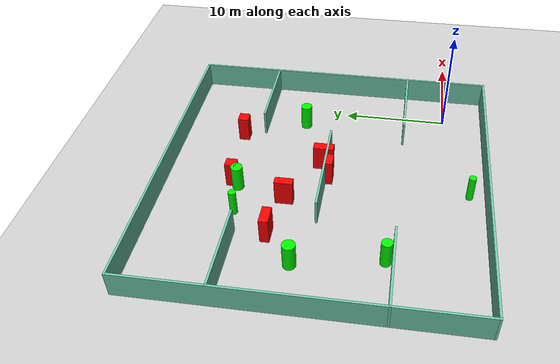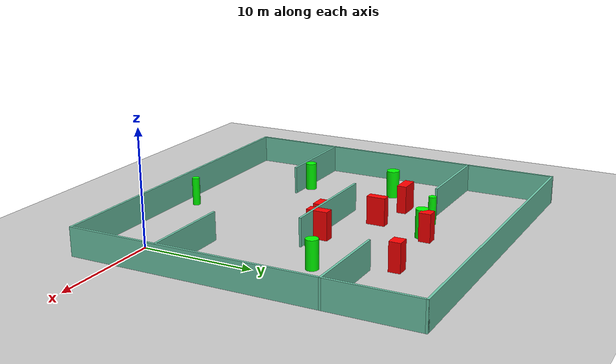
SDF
<sdf version="1.7">
 <world name="default">
  <light name="sun" type="directional">
   <pose>0 0 10 0 -0 0</pose>
   <diffuse>0.8 0.8 0.8 1</diffuse>
   <specular>0.2 0.2 0.2 1</specular>
   <attenuation>
    <range>1000</range>
    <constant>0.9</constant>
    <linear>0.01</linear>
    <quadratic>0.001</quadratic>
   </attenuation>
   <direction>-0.5 0.1 -0.9</direction>
   <spot><inner_angle>0</inner_angle><outer_angle>0</outer_angle><falloff>0</falloff></spot>
  </light>
  <model name="ground_plane">
   <static>1</static>
   <link name="link">
    <collision name="collision">
     <geometry><plane><normal>0 0 1</normal><size>100 100</size></plane></geometry>
     <surface>
      <contact><collide_bitmask>65535</collide_bitmask></contact>
      <friction><ode><mu>100</mu><mu2>50</mu2></ode></friction>
     </surface>
    </collision>
    <visual name="visual">
     <cast_shadows>0</cast_shadows>
     <geometry><plane><normal>0 0 1</normal><size>100 100</size></plane></geometry>
     <material>
      <script><uri>file://media/materials/scripts/gazebo.material</uri><name>Gazebo/Grey</name></script>
     </material>
    </visual>
   </link>
  </model>
  <gravity>0 0 -9.8</gravity>
  <magnetic_field>6e-06 2.3e-05 -4.2e-05</magnetic_field>
  <atmosphere type="adiabatic"/>
  <physics type="ode">
   <max_step_size>0.001</max_step_size>
   <real_time_factor>1</real_time_factor>
   <real_time_update_rate>1000</real_time_update_rate>
  </physics>
  <scene><ambient>0.4 0.4 0.4 1</ambient><background>0.7 0.7 0.7 1</background><shadows>1</shadows></scene>
  <spherical_coordinates>
   <surface_model>EARTH_WGS84</surface_model>
   <latitude_deg>0</latitude_deg>
   <longitude_deg>0</longitude_deg>
   <elevation>0</elevation>
   <heading_deg>0</heading_deg>
  </spherical_coordinates>
  <model name="my_base_walls">
   <link name="Wall_10">
    <collision name="Wall_10_Collision">
     <geometry><box><size>8.2 0.2 2.5</size></box></geometry>
     <pose>0 0 1.25 0 -0 0</pose>
    </collision>
    <visual name="Wall_10_Visual">
     <pose>0 0 1.25 0 -0 0</pose>
     <geometry><box><size>8.2 0.2 2.5</size></box></geometry>
     <material>
      <script><uri>file://media/materials/scripts/gazebo.material</uri><name>Gazebo/Grey</name></script>
      <ambient>0.435294 0.796078 0.67451 1</ambient>
     </material>
     <meta><layer>0</layer></meta>
    </visual>
    <pose>-11 -7 0 0 -0 0</pose>
   </link>
   <link name="Wall_12">
    <collision name="Wall_12_Collision">
     <geometry><box><size>8.2 0.2 2.5</size></box></geometry>
     <pose>0 0 1.25 0 -0 0</pose>
    </collision>
    <visual name="Wall_12_Visual">
     <pose>0 0 1.25 0 -0 0</pose>
     <geometry><box><size>8.2 0.2 2.5</size></box></geometry>
     <material>
      <script><uri>file://media/materials/scripts/gazebo.material</uri><name>Gazebo/Grey</name></script>
      <ambient>0.435294 0.796078 0.67451 1</ambient>
     </material>
     <meta><layer>0</layer></meta>
    </visual>
    <pose>-11 7 0 0 -0 0</pose>
   </link>
   <link name="Wall_14">
    <collision name="Wall_14_Collision">
     <geometry><box><size>8.2 0.2 2.5</size></box></geometry>
     <pose>0 0 1.25 0 -0 0</pose>
    </collision>
    <visual name="Wall_14_Visual">
     <pose>0 0 1.25 0 -0 0</pose>
     <geometry><box><size>8.2 0.2 2.5</size></box></geometry>
     <material>
      <script><uri>file://media/materials/scripts/gazebo.material</uri><name>Gazebo/Grey</name></script>
      <ambient>0.435294 0.796078 0.67451 1</ambient>
     </material>
     <meta><layer>0</layer></meta>
    </visual>
    <pose>11 7 0 0 -0 3.14159</pose>
   </link>
   <link name="Wall_16">
    <collision name="Wall_16_Collision">
     <geometry><box><size>10.2 0.2 2.5</size></box></geometry>
     <pose>0 0 1.25 0 -0 0</pose>
    </collision>
    <visual name="Wall_16_Visual">
     <pose>0 0 1.25 0 -0 0</pose>
     <geometry><box><size>10.2 0.2 2.5</size></box></geometry>
     <material>
      <script><uri>file://media/materials/scripts/gazebo.material</uri><name>Gazebo/Grey</name></script>
      <ambient>0.435294 0.796078 0.67451 1</ambient>
     </material>
     <meta><layer>0</layer></meta>
    </visual>
    <pose>0 0 0 0 -0 3.14159</pose>
   </link>
   <link name="Wall_2">
    <collision name="Wall_2_Collision">
     <geometry><box><size>30.2 0.2 2.5</size></box></geometry>
     <pose>0 0 1.25 0 -0 0</pose>
    </collision>
    <visual name="Wall_2_Visual">
     <pose>0 0 1.25 0 -0 0</pose>
     <geometry><box><size>30.2 0.2 2.5</size></box></geometry>
     <material>
      <script><uri>file://media/materials/scripts/gazebo.material</uri><name>Gazebo/Grey</name></script>
      <ambient>0.435294 0.796078 0.67451 1</ambient>
     </material>
     <meta><layer>0</layer></meta>
    </visual>
    <pose>0 -15 0 0 -0 3.14159</pose>
   </link>
   <link name="Wall_3">
    <collision name="Wall_3_Collision">
     <geometry><box><size>30.2 0.2 2.5</size></box></geometry>
     <pose>0 0 1.25 0 -0 0</pose>
    </collision>
    <visual name="Wall_3_Visual">
     <pose>0 0 1.25 0 -0 0</pose>
     <geometry><box><size>30.2 0.2 2.5</size></box></geometry>
     <material>
      <script><uri>file://media/materials/scripts/gazebo.material</uri><name>Gazebo/Grey</name></script>
      <ambient>0.435294 0.796078 0.67451 1</ambient>
     </material>
     <meta><layer>0</layer></meta>
    </visual>
    <pose>-15 0 0 0 -0 1.5708</pose>
   </link>
   <link name="Wall_4">
    <collision name="Wall_4_Collision">
     <geometry><box><size>30.2 0.2 2.5</size></box></geometry>
     <pose>0 0 1.25 0 -0 0</pose>
    </collision>
    <visual name="Wall_4_Visual">
     <pose>0 0 1.25 0 -0 0</pose>
     <geometry><box><size>30.2 0.2 2.5</size></box></geometry>
     <material>
      <script><uri>file://media/materials/scripts/gazebo.material</uri><name>Gazebo/Grey</name></script>
      <ambient>0.435294 0.796078 0.67451 1</ambient>
     </material>
     <meta><layer>0</layer></meta>
    </visual>
    <pose>0 15 0 0 -0 0</pose>
   </link>
   <link name="Wall_6">
    <collision name="Wall_6_Collision">
     <geometry><box><size>30.2 0.2 2.5</size></box></geometry>
     <pose>0 0 1.25 0 -0 0</pose>
    </collision>
    <visual name="Wall_6_Visual">
     <pose>0 0 1.25 0 -0 0</pose>
     <geometry><box><size>30.2 0.2 2.5</size></box></geometry>
     <material>
      <script><uri>file://media/materials/scripts/gazebo.material</uri><name>Gazebo/Grey</name></script>
      <ambient>0.435294 0.796078 0.67451 1</ambient>
     </material>
     <meta><layer>0</layer></meta>
    </visual>
    <pose>15 0 0 0 -0 1.5708</pose>
   </link>
   <link name="Wall_8">
    <collision name="Wall_8_Collision">
     <geometry><box><size>8.2 0.2 2.5</size></box></geometry>
     <pose>0 0 1.25 0 -0 0</pose>
    </collision>
    <visual name="Wall_8_Visual">
     <pose>0 0 1.25 0 -0 0</pose>
     <geometry><box><size>8.2 0.2 2.5</size></box></geometry>
     <material>
      <script><uri>file://media/materials/scripts/gazebo.material</uri><name>Gazebo/Grey</name></script>
      <ambient>0.435294 0.796078 0.67451 1</ambient>
     </material>
     <meta><layer>0</layer></meta>
    </visual>
    <pose>11 -7 0 0 -0 3.14159</pose>
   </link>
   <static>1</static>
   <pose>-11 11 0 0 -0 0</pose>
  </model>
  <model name="cylinder1">
   <static>1</static>
   <link name="link">
    <inertial>
     <mass>1</mass>
     <inertia><ixx>0.5</ixx><ixy>0</ixy><ixz>0</ixz><iyy>0.5</iyy><iyz>0</iyz><izz>1</izz></inertia>
    </inertial>
    <collision name="collision">
     <geometry><cylinder><radius>0.48927062929468407</radius><length>2.5</length></cylinder></geometry>
    </collision>
    <visual name="visual">
     <geometry><cylinder><radius>0.48927062929468407</radius><length>2.5</length></cylinder></geometry>
     <material>
      <ambient>0 1 0 1</ambient>
      <diffuse>0 1 0 1</diffuse>
      <specular>0.1 0.1 0.1 1</specular>
      <emissive>0 0 0 0</emissive>
     </material>
    </visual>
   </link>
   <pose>-19.81671378456395 4.626723884404364 1.25 0 0 0</pose>
  </model>
  <model name="cylinder2">
   <static>1</static>
   <link name="link">
    <inertial>
     <mass>1</mass>
     <inertia><ixx>0.5</ixx><ixy>0</ixy><ixz>0</ixz><iyy>0.5</iyy><iyz>0</iyz><izz>1</izz></inertia>
    </inertial>
    <collision name="collision">
     <geometry><cylinder><radius>0.3387514005601002</radius><length>2.5</length></cylinder></geometry>
    </collision>
    <visual name="visual">
     <geometry><cylinder><radius>0.3387514005601002</radius><length>2.5</length></cylinder></geometry>
     <material>
      <ambient>0 1 0 1</ambient>
      <diffuse>0 1 0 1</diffuse>
      <specular>0.1 0.1 0.1 1</specular>
      <emissive>0 0 0 0</emissive>
     </material>
    </visual>
   </link>
   <pose>-11.008318325477527 -2.4816487061750667 1.25 0 0 0</pose>
  </model>
  <model name="cylinder3">
   <static>1</static>
   <link name="link">
    <inertial>
     <mass>1</mass>
     <inertia><ixx>0.5</ixx><ixy>0</ixy><ixz>0</ixz><iyy>0.5</iyy><iyz>0</iyz><izz>1</izz></inertia>
    </inertial>
    <collision name="collision">
     <geometry><cylinder><radius>0.5445513410813165</radius><length>2.5</length></cylinder></geometry>
    </collision>
    <visual name="visual">
     <geometry><cylinder><radius>0.5445513410813165</radius><length>2.5</length></cylinder></geometry>
     <material>
      <ambient>0 1 0 1</ambient>
      <diffuse>0 1 0 1</diffuse>
      <specular>0.1 0.1 0.1 1</specular>
      <emissive>0 0 0 0</emissive>
     </material>
    </visual>
   </link>
   <pose>-12.454959127392115 18.884421743394032 1.25 0 0 0</pose>
  </model>
  <model name="cylinder4">
   <static>1</static>
   <link name="link">
    <inertial>
     <mass>1</mass>
     <inertia><ixx>0.5</ixx><ixy>0</ixy><ixz>0</ixz><iyy>0.5</iyy><iyz>0</iyz><izz>1</izz></inertia>
    </inertial>
    <collision name="collision">
     <geometry><cylinder><radius>0.5873789821685415</radius><length>2.5</length></cylinder></geometry>
    </collision>
    <visual name="visual">
     <geometry><cylinder><radius>0.5873789821685415</radius><length>2.5</length></cylinder></geometry>
     <material>
      <ambient>0 1 0 1</ambient>
      <diffuse>0 1 0 1</diffuse>
      <specular>0.1 0.1 0.1 1</specular>
      <emissive>0 0 0 0</emissive>
     </material>
    </visual>
   </link>
   <pose>-21.145628290033706 12.481311296222312 1.25 0 0 0</pose>
  </model>
  <model name="cylinder5">
   <static>1</static>
   <link name="link">
    <inertial>
     <mass>1</mass>
     <inertia><ixx>0.5</ixx><ixy>0</ixy><ixz>0</ixz><iyy>0.5</iyy><iyz>0</iyz><izz>1</izz></inertia>
    </inertial>
    <collision name="collision">
     <geometry><cylinder><radius>0.3482142968347306</radius><length>2.5</length></cylinder></geometry>
    </collision>
    <visual name="visual">
     <geometry><cylinder><radius>0.3482142968347306</radius><length>2.5</length></cylinder></geometry>
     <material>
      <ambient>0 1 0 1</ambient>
      <diffuse>0 1 0 1</diffuse>
      <specular>0.1 0.1 0.1 1</specular>
      <emissive>0 0 0 0</emissive>
     </material>
    </visual>
   </link>
   <pose>-15.766582830600914 18.496547238301055 1.25 0 0 0</pose>
  </model>
  <model name="cylinder6">
   <static>1</static>
   <link name="link">
    <inertial>
     <mass>1</mass>
     <inertia><ixx>0.5</ixx><ixy>0</ixy><ixz>0</ixz><iyy>0.5</iyy><iyz>0</iyz><izz>1</izz></inertia>
    </inertial>
    <collision name="collision">
     <geometry><cylinder><radius>0.537728306985197</radius><length>2.5</length></cylinder></geometry>
    </collision>
    <visual name="visual">
     <geometry><cylinder><radius>0.537728306985197</radius><length>2.5</length></cylinder></geometry>
     <material>
      <ambient>0 1 0 1</ambient>
      <diffuse>0 1 0 1</diffuse>
      <specular>0.1 0.1 0.1 1</specular>
      <emissive>0 0 0 0</emissive>
     </material>
    </visual>
   </link>
   <pose>-2.2954516456773426 14.018607940990378 1.25 0 0 0</pose>
  </model>
  <model name="box1">
   <static>1</static>
   <link name="link">
    <inertial>
     <mass>1</mass>
     <inertia><ixx>0.083</ixx><ixy>0</ixy><ixz>0</ixz><iyy>0.083</iyy><iyz>0</iyz><izz>0.083</izz></inertia>
    </inertial>
    <collision name="collision">
     <geometry><box><size>0.8626513232123354 1.9295489394951868 2.5</size></box></geometry>
    </collision>
    <visual name="visual">
     <geometry><box><size>0.8626513232123354 1.9295489394951868 2.5</size></box></geometry>
     <material>
      <ambient>1 0 0 1</ambient>
      <diffuse>1 0 0 1</diffuse>
      <specular>0.1 0.1 0.1 1</specular>
      <emissive>0 0 0 0</emissive>
     </material>
    </visual>
    <sensor name="my_contact" type="contact">
     <contact><collision>box_collision</collision><topic>__default_topic__</topic></contact>
    </sensor>
   </link>
   <pose>-8.435502692866752 11.386170155144733 1.25 0 0 0</pose>
  </model>
  <model name="box2">
   <static>1</static>
   <link name="link">
    <inertial>
     <mass>1</mass>
     <inertia><ixx>0.083</ixx><ixy>0</ixy><ixz>0</ixz><iyy>0.083</iyy><iyz>0</iyz><izz>0.083</izz></inertia>
    </inertial>
    <collision name="collision">
     <geometry><box><size>1.8183972791102532 0.8428731814370884 2.5</size></box></geometry>
    </collision>
    <visual name="visual">
     <geometry><box><size>1.8183972791102532 0.8428731814370884 2.5</size></box></geometry>
     <material>
      <ambient>1 0 0 1</ambient>
      <diffuse>1 0 0 1</diffuse>
      <specular>0.1 0.1 0.1 1</specular>
      <emissive>0 0 0 0</emissive>
     </material>
    </visual>
    <sensor name="my_contact" type="contact">
     <contact><collision>box_collision</collision><topic>__default_topic__</topic></contact>
    </sensor>
   </link>
   <pose>-18.037228645605193 15.052118670198897 1.25 0 0 0</pose>
  </model>
  <model name="box3">
   <static>1</static>
   <link name="link">
    <inertial>
     <mass>1</mass>
     <inertia><ixx>0.083</ixx><ixy>0</ixy><ixz>0</ixz><iyy>0.083</iyy><iyz>0</iyz><izz>0.083</izz></inertia>
    </inertial>
    <collision name="collision">
     <geometry><box><size>0.7657552877199651 1.6728623633214246 2.5</size></box></geometry>
    </collision>
    <visual name="visual">
     <geometry><box><size>0.7657552877199651 1.6728623633214246 2.5</size></box></geometry>
     <material>
      <ambient>1 0 0 1</ambient>
      <diffuse>1 0 0 1</diffuse>
      <specular>0.1 0.1 0.1 1</specular>
      <emissive>0 0 0 0</emissive>
     </material>
    </visual>
    <sensor name="my_contact" type="contact">
     <contact><collision>box_collision</collision><topic>__default_topic__</topic></contact>
    </sensor>
   </link>
   <pose>-13.705875875036387 14.27745143500173 1.25 0 0 0</pose>
  </model>
  <model name="box4">
   <static>1</static>
   <link name="link">
    <inertial>
     <mass>1</mass>
     <inertia><ixx>0.083</ixx><ixy>0</ixy><ixz>0</ixz><iyy>0.083</iyy><iyz>0</iyz><izz>0.083</izz></inertia>
    </inertial>
    <collision name="collision">
     <geometry><box><size>1.3901612877148362 0.7845396228318915 2.5</size></box></geometry>
    </collision>
    <visual name="visual">
     <geometry><box><size>1.3901612877148362 0.7845396228318915 2.5</size></box></geometry>
     <material>
      <ambient>1 0 0 1</ambient>
      <diffuse>1 0 0 1</diffuse>
      <specular>0.1 0.1 0.1 1</specular>
      <emissive>0 0 0 0</emissive>
     </material>
    </visual>
    <sensor name="my_contact" type="contact">
     <contact><collision>box_collision</collision><topic>__default_topic__</topic></contact>
    </sensor>
   </link>
   <pose>-10.225135416095778 10.657577110878886 1.25 0 0 0</pose>
  </model>
  <model name="box5">
   <static>1</static>
   <link name="link">
    <inertial>
     <mass>1</mass>
     <inertia><ixx>0.083</ixx><ixy>0</ixy><ixz>0</ixz><iyy>0.083</iyy><iyz>0</iyz><izz>0.083</izz></inertia>
    </inertial>
    <collision name="collision">
     <geometry><box><size>0.9976013754405311 1.0328462270884633 2.5</size></box></geometry>
    </collision>
    <visual name="visual">
     <geometry><box><size>0.9976013754405311 1.0328462270884633 2.5</size></box></geometry>
     <material>
      <ambient>1 0 0 1</ambient>
      <diffuse>1 0 0 1</diffuse>
      <specular>0.1 0.1 0.1 1</specular>
      <emissive>0 0 0 0</emissive>
     </material>
    </visual>
    <sensor name="my_contact" type="contact">
     <contact><collision>box_collision</collision><topic>__default_topic__</topic></contact>
    </sensor>
   </link>
   <pose>-11.891153372118442 19.539222913110574 1.25 0 0 0</pose>
  </model>
  <model name="box6">
   <static>1</static>
   <link name="link">
    <inertial>
     <mass>1</mass>
     <inertia><ixx>0.083</ixx><ixy>0</ixy><ixz>0</ixz><iyy>0.083</iyy><iyz>0</iyz><izz>0.083</izz></inertia>
    </inertial>
    <collision name="collision">
     <geometry><box><size>1.0712687486346657 1.0168941504793998 2.5</size></box></geometry>
    </collision>
    <visual name="visual">
     <geometry><box><size>1.0712687486346657 1.0168941504793998 2.5</size></box></geometry>
     <material>
      <ambient>1 0 0 1</ambient>
      <diffuse>1 0 0 1</diffuse>
      <specular>0.1 0.1 0.1 1</specular>
      <emissive>0 0 0 0</emissive>
     </material>
    </visual>
    <sensor name="my_contact" type="contact">
     <contact><collision>box_collision</collision><topic>__default_topic__</topic></contact>
    </sensor>
   </link>
   <pose>-4.932380282320095 19.937436824593078 1.25 0 0 0</pose>
  </model>
 </world>
</sdf>
